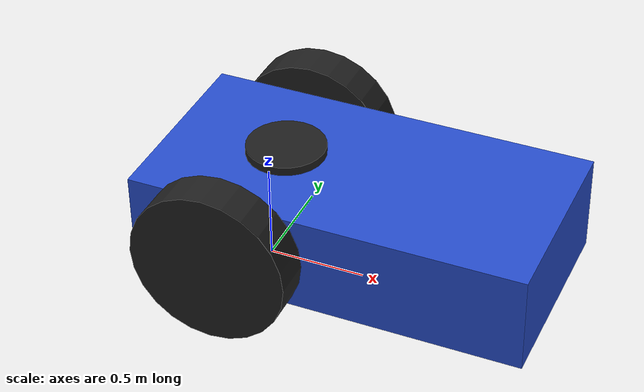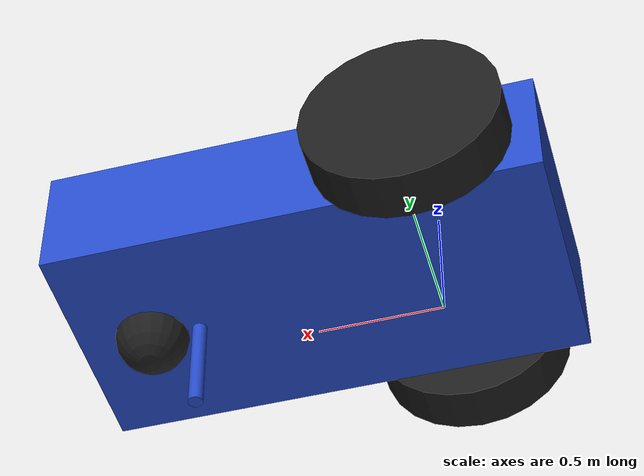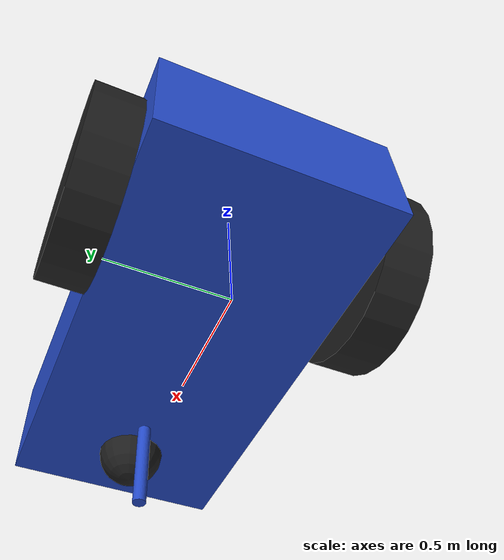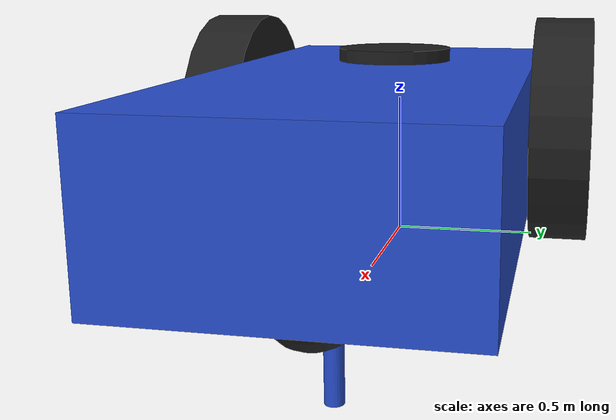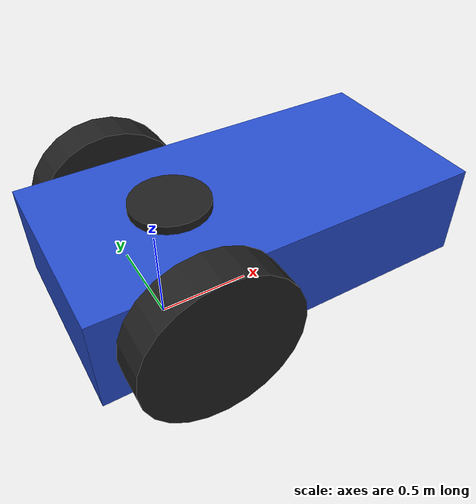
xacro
<?xml version="1.0"?>
<robot xmlns:xacro="http://www.ros.org/wiki/xacro"  name="robot">
    <!-- Include Colours & Inertia Macros -->
    <xacro:include filename="inertial_macros.xacro"/>

    <!-- Links -->
    <link name="base_link"></link>

    <link name='chassis'>
        <visual>
            <geometry>
                <box size="2.0 1.0 0.5"/>
            </geometry>
            <origin xyz="0.5 0 0" rpy="0 0 0"/>
            <material name="blue"/>
        </visual>
        <collision name='collision'>
            <geometry>
                <box size="2.0 1.0 0.5"/>
            </geometry>
            <origin xyz="0.5 0 0.4" rpy="0 0 0"/>
        </collision>
        <xacro:inertial_box mass="5.0" x="2.0" y="1.0" z="0.5">
            <origin xyz="0.5 0 0" rpy="0 0 0"/>
        </xacro:inertial_box>
    </link>

    <link name='left_wheel'>
        <visual>
            <geometry>
                <cylinder length="0.2" radius="0.4"/>
            </geometry>
            <origin xyz="0 0 0" rpy="0 0 0"/>
            <material name="black"/>
        </visual>
        <collision name='collision'>
            <geometry>
                <cylinder length="0.2" radius="0.4"/>
            </geometry>
            <origin xyz="0 0 0" rpy="0 0 0"/>
        </collision>
        <xacro:inertial_cylinder mass="2.0" length="0.2" radius="0.4">
            <origin xyz="0 0 0" rpy="0 0 0"/>
        </xacro:inertial_cylinder>
    </link>

    <link name='right_wheel'>
        <visual>
            <geometry>
                <cylinder length="0.2" radius="0.4"/>
            </geometry>
            <origin xyz="0 0 0" rpy="0 0 0"/>
            <material name="black"/>
        </visual>
        <collision name='collision'>
            <geometry>
                <cylinder length="0.2" radius="0.4"/>
            </geometry>
            <origin xyz="0 0 0" rpy="0 0 0"/>
        </collision>
        <xacro:inertial_cylinder mass="2.0" length="0.2" radius="0.4">
            <origin xyz="0 0 0" rpy="0 0 0"/>
        </xacro:inertial_cylinder>
    </link>

    <link name='caster_wheel'>
        <visual>
            <geometry>
                <sphere radius="0.15"/>
            </geometry>
            <origin xyz="0 0 0" rpy="0 0 0"/>
            <material name="black"/>
        </visual>
        <collision name='collision'>
            <geometry>
                <sphere radius="0.15"/>
            </geometry>
            <origin xyz="0 0 0" rpy="0 0 0"/>
        </collision>
        <xacro:inertial_sphere mass="0.5" radius="0.15">
            <origin xyz="0 0 0" rpy="0 0 0"/>
        </xacro:inertial_sphere>
    </link>

    <link name="pen_link">
        <visual>
            <geometry>
                <cylinder radius="0.03" length="0.4"/>
            </geometry>
            <origin xyz="0 0 -0.2"/>
            <material name="blue"/>
        </visual>

        <collision>
            <geometry>
                <cylinder radius="0.03" length="0.4"/>
            </geometry>
        </collision>

        <xacro:inertial_cylinder mass="0.05" length="0.4" radius="0.03">
            <origin xyz="0 0 0"/>
        </xacro:inertial_cylinder>

    </link>

    <link name='laser_frame'>
        <visual>
            <geometry>
                <cylinder length="0.05" radius="0.2"/>
            </geometry>
            <material name="black"/>
        </visual>
        <collision name='collision'>
            <geometry>
                <cylinder length="0.05" radius="0.2"/>
            </geometry>
        </collision>
        <xacro:inertial_cylinder mass="2.0" length="0.05" radius="0.2">
            <origin xyz="0 0 0" rpy="0 0 0"/>
        </xacro:inertial_cylinder>
    </link>

    <!-- Joints -->
    <joint name="chassis_joint" type="fixed">
        <origin xyz ="0 0 0.4" rpy="0 0 0"/>
        <parent link="base_link"/>
        <child link="chassis"/>
    </joint>

    <joint name="left_wheel_joint" type="continuous">
        <origin xyz ="0 0.6 0" rpy="-1.57 0 0"/>
        <parent link="chassis"/>
        <child link="left_wheel"/>
        <axis xyz="0 0 1"/>
    </joint>

    <joint name="right_wheel_joint" type="continuous">
        <origin xyz ="0 -0.6 0" rpy="1.57 0 0"/>
        <parent link="chassis"/>
        <child link="right_wheel"/>
        <axis xyz="0 0 1"/>
    </joint>

    <joint name="caster_joint" type="fixed">
        <origin xyz ="1.2 0 -0.25 " rpy="0 0 0"/>
        <parent link="chassis"/>
        <child link="caster_wheel"/>
    </joint>

    <joint name="pen_joint" type="prismatic">
        <parent link="chassis"/>
        <child link="pen_link"/>

        <origin xyz="1.0 0 -0.25" rpy="0 0 0"/>

        <axis xyz="0 0 1"/>

        <limit
           lower="-0.05"
           upper="0.05"
           effort="10"
           velocity="0.1"/>
    </joint>

    <joint name="laser_joint" type="fixed">
        <origin xyz ="0.1 0 0.27" rpy="0 0 0"/>
        <parent link="chassis"/>
        <child link="laser_frame"/>
    </joint>

    <gazebo reference="left_wheel">
        <mu1>0.9</mu1>
        <mu2>0.9</mu2>
    </gazebo>

    <gazebo reference="right_wheel">
        <mu1>0.9</mu1>
        <mu2>0.9</mu2>
    </gazebo>

    <gazebo reference="caster_wheel">
        <mu1>0.05</mu1>
        <mu2>0.05</mu2>
    </gazebo>

    <!-- Plugins to control wheel joints using topics -->

    <gazebo>
        <plugin filename="gz-sim-diff-drive-system" name="gz::sim::systems::DiffDrive">
            <left_joint>left_wheel_joint</left_joint>
            <right_joint>right_wheel_joint</right_joint>
            <wheel_separation>1.2</wheel_separation>
            <wheel_radius>0.4</wheel_radius>
            <odom_publish_frequency>50</odom_publish_frequency>
            <topic>/cmd_vel</topic>
        </plugin>
    </gazebo>

    <gazebo reference="chassis">
        <visual>
            <material>
                <ambient>0.0 0.0 1.0 1.0</ambient>  <diffuse>0.0 0.0 1.0 1.0</diffuse>
            </material>
        </visual>
    </gazebo>

    <gazebo reference="left_wheel">
        <visual>
            <material>
                <ambient>0.2 0.2 0.2 1.0</ambient>  <diffuse>0.2 0.2 0.2 1.0</diffuse>
            </material>
        </visual>
    </gazebo>

    <gazebo reference="right_wheel">
        <visual>
            <material>
                <ambient>0.2 0.2 0.2 1.0</ambient>
                <diffuse>0.2 0.2 0.2 1.0</diffuse>
            </material>
        </visual>
    </gazebo>

    <gazebo reference="laser_frame">
        <sensor name="laser" type="gpu_lidar">
            <pose> 0 0 0 0 0 0 </pose>
            <visualize>false</visualize>
            <update_rate>10</update_rate>

            <topic>/scan</topic>
            <gz_frame_id>laser_frame</gz_frame_id>

            <ray>
                <scan>
                    <horizontal>
                        <samples>360</samples>
                        <resolution>1</resolution>
                        <min_angle>-3.14</min_angle>
                        <max_angle>3.14</max_angle>
                    </horizontal>
                </scan>
                <range>
                    <min>0.3</min>
                    <max>12</max>
                    <resolution>0.01</resolution>
                </range>
            </ray>
        </sensor>
    </gazebo>

    <ros2_control name="GazeboSystem" type="system">

        <hardware>
           <plugin>gz_ros2_control/GazeboSystem</plugin>
        </hardware>

        <joint name="pen_joint">
           <command_interface name="position"/>
           <state_interface name="position"/>
           <state_interface name="velocity"/>
        </joint>

    </ros2_control>
</robot>

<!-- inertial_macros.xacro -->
<robot xmlns:xacro="http://www.ros.org/wiki/xacro" >

    <xacro:macro name="inertial_sphere" params="mass radius *origin">
        <inertial>
            <xacro:insert_block name="origin"/>
            <mass value="${mass}" />
            <inertia ixx="${(2/5) * mass * (radius*radius)}" ixy="0.0" ixz="0.0"
                    iyy="${(2/5) * mass * (radius*radius)}" iyz="0.0"
                    izz="${(2/5) * mass * (radius*radius)}" />
        </inertial>
    </xacro:macro>

    <xacro:macro name="inertial_box" params="mass x y z *origin">
        <inertial>
            <xacro:insert_block name="origin"/>
            <mass value="${mass}" />
            <inertia ixx="${(1/12) * mass * (y*y+z*z)}" ixy="0.0" ixz="0.0"
                    iyy="${(1/12) * mass * (x*x+z*z)}" iyz="0.0"
                    izz="${(1/12) * mass * (x*x+y*y)}" />
        </inertial>
    </xacro:macro>

    <xacro:macro name="inertial_cylinder" params="mass length radius *origin">
        <inertial>
            <xacro:insert_block name="origin"/>
            <mass value="${mass}" />
            <inertia ixx="${(1/12) * mass * (3*radius*radius + length*length)}" ixy="0.0" ixz="0.0"
                    iyy="${(1/12) * mass * (3*radius*radius + length*length)}" iyz="0.0"
                    izz="${(1/2) * mass * (radius*radius)}" />
        </inertial>
    </xacro:macro>

    <xacro:inertial_cylinder mass="0.05" length="0.4" radius="0.03">
            <origin xyz="0 0 0"/>
    </xacro:inertial_cylinder>

</robot>
